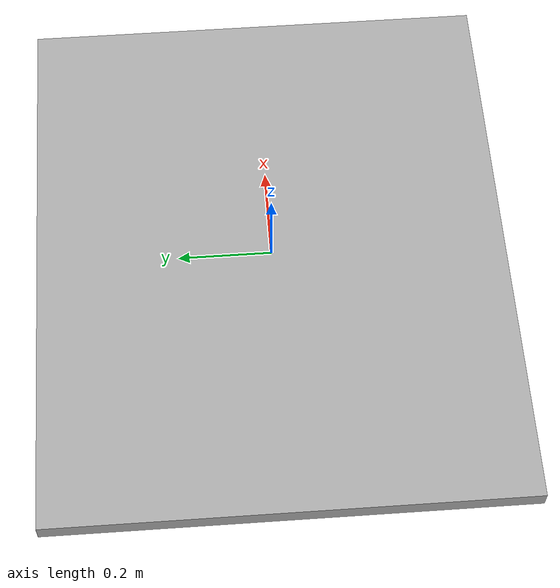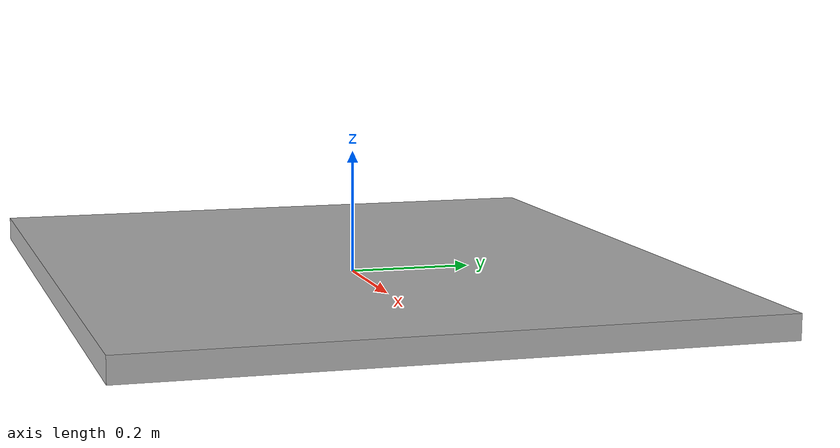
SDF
<?xml version="1.0"?>
<!-- Componente "mesa_trabajo" de la biblioteca del contrato 2.0. Origen = centro geométrico. -->
<sdf version="1.9"><model name='mesa_trabajo'><static>true</static><link name='link'><collision name='c'><geometry><box><size>1.2 1 0.04</size></box></geometry></collision><visual name='v'><geometry><box><size>1.2 1 0.04</size></box></geometry><material><ambient>0.7 0.7 0.7 1</ambient><diffuse>0.7 0.7 0.7 1</diffuse></material></visual></link></model></sdf>
